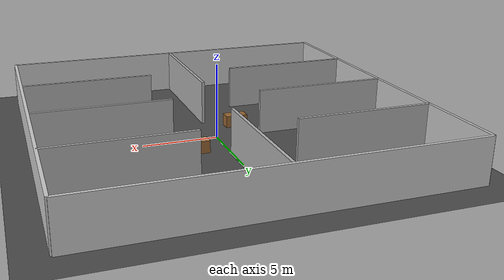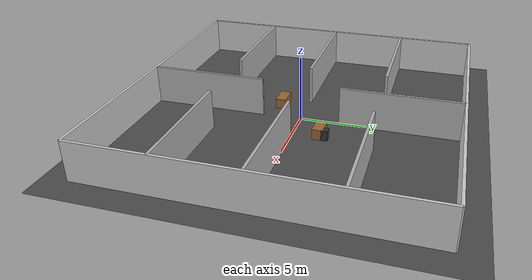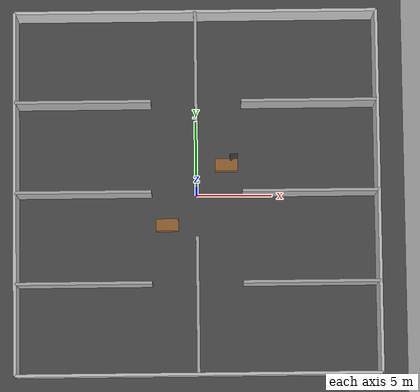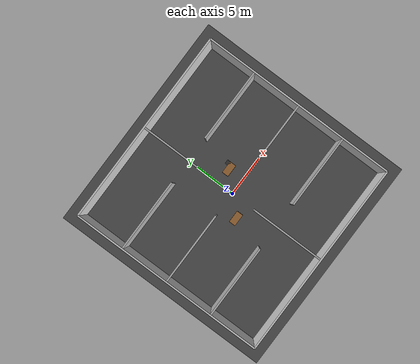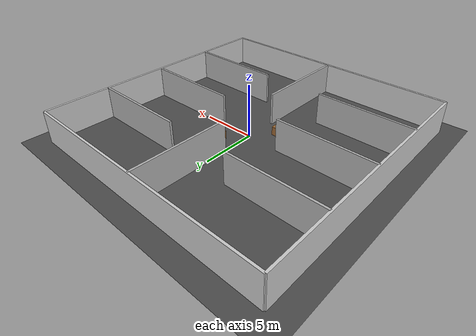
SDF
<sdf version="1.8">
 <world name="simple_office">
  <physics name="1ms" type="ignored">
   <max_step_size>0.001</max_step_size>
   <real_time_factor>1.0</real_time_factor>
  </physics>
  <plugin filename="gz-sim-physics-system" name="gz::sim::systems::Physics"/>
  <plugin filename="gz-sim-user-commands-system" name="gz::sim::systems::UserCommands"/>
  <plugin filename="gz-sim-scene-broadcaster-system" name="gz::sim::systems::SceneBroadcaster"/>
  <plugin filename="gz-sim-contact-system" name="gz::sim::systems::Contact"/>
  <plugin filename="gz-sim-sensors-system" name="gz::sim::systems::Sensors">
   <render_engine>ogre2</render_engine>
  </plugin>
  <plugin filename="gz-sim-scene-broadcaster-system" name="gz::sim::systems::SceneBroadcaster"/>
  <light type="directional" name="sun">
   <pose>0 0 10 0 0 0</pose>
   <diffuse>0.8 0.8 0.8 1</diffuse>
   <specular>0.2 0.2 0.2 1</specular>
   <attenuation>
    <range>1000</range>
    <constant>0.9</constant>
    <linear>0.01</linear>
    <quadratic>0.001</quadratic>
   </attenuation>
   <direction>-0.5 0.1 -0.9</direction>
  </light>
  <model name="ground_plane">
   <static>true</static>
   <link name="link">
    <collision name="collision">
     <geometry><plane><normal>0 0 1</normal><size>200 200</size></plane></geometry>
    </collision>
    <visual name="visual">
     <geometry><plane><normal>0 0 1</normal><size>200 200</size></plane></geometry>
     <material>
      <ambient>0.3 0.3 0.3 1</ambient>
      <diffuse>0.3 0.3 0.3 1</diffuse>
      <specular>0.3 0.3 0.3 1</specular>
     </material>
    </visual>
   </link>
  </model>
  <model name="outer_wall_east">
   <static>true</static>
   <pose>12 0 1.5 0 0 0</pose>
   <link name="link">
    <collision name="collision"><geometry><box><size>0.2 24 3</size></box></geometry></collision>
    <visual name="visual">
     <geometry><box><size>0.2 24 3</size></box></geometry>
     <material>
      <ambient>0.8 0.8 0.8 1</ambient>
      <diffuse>0.8 0.8 0.8 1</diffuse>
      <specular>0.8 0.8 0.8 1</specular>
     </material>
    </visual>
   </link>
  </model>
  <model name="outer_wall_west">
   <static>true</static>
   <pose>-12 0 1.5 0 0 0</pose>
   <link name="link">
    <collision name="collision"><geometry><box><size>0.2 24 3</size></box></geometry></collision>
    <visual name="visual">
     <geometry><box><size>0.2 24 3</size></box></geometry>
     <material>
      <ambient>0.8 0.8 0.8 1</ambient>
      <diffuse>0.8 0.8 0.8 1</diffuse>
      <specular>0.8 0.8 0.8 1</specular>
     </material>
    </visual>
   </link>
  </model>
  <model name="outer_wall_north">
   <static>true</static>
   <pose>0 12 1.5 0 0 0</pose>
   <link name="link">
    <collision name="collision"><geometry><box><size>24 0.2 3</size></box></geometry></collision>
    <visual name="visual">
     <geometry><box><size>24 0.2 3</size></box></geometry>
     <material>
      <ambient>0.8 0.8 0.8 1</ambient>
      <diffuse>0.8 0.8 0.8 1</diffuse>
      <specular>0.8 0.8 0.8 1</specular>
     </material>
    </visual>
   </link>
  </model>
  <model name="outer_wall_south">
   <static>true</static>
   <pose>0 -12 1.5 0 0 0</pose>
   <link name="link">
    <collision name="collision"><geometry><box><size>24 0.2 3</size></box></geometry></collision>
    <visual name="visual">
     <geometry><box><size>24 0.2 3</size></box></geometry>
     <material>
      <ambient>0.8 0.8 0.8 1</ambient>
      <diffuse>0.8 0.8 0.8 1</diffuse>
      <specular>0.8 0.8 0.8 1</specular>
     </material>
    </visual>
   </link>
  </model>
  <model name="center_horizontal_left">
   <static>true</static>
   <pose>-7.5 0 1.5 0 0 0</pose>
   <link name="link">
    <collision name="collision"><geometry><box><size>9 0.2 3</size></box></geometry></collision>
    <visual name="visual">
     <geometry><box><size>9 0.2 3</size></box></geometry>
     <material>
      <ambient>0.7 0.7 0.7 1</ambient>
      <diffuse>0.7 0.7 0.7 1</diffuse>
      <specular>0.7 0.7 0.7 1</specular>
     </material>
    </visual>
   </link>
  </model>
  <model name="center_horizontal_right">
   <static>true</static>
   <pose>7.5 0 1.5 0 0 0</pose>
   <link name="link">
    <collision name="collision"><geometry><box><size>9 0.2 3</size></box></geometry></collision>
    <visual name="visual">
     <geometry><box><size>9 0.2 3</size></box></geometry>
     <material>
      <ambient>0.7 0.7 0.7 1</ambient>
      <diffuse>0.7 0.7 0.7 1</diffuse>
      <specular>0.7 0.7 0.7 1</specular>
     </material>
    </visual>
   </link>
  </model>
  <model name="center_vertical_bottom">
   <static>true</static>
   <pose>0 -7.5 1.5 0 0 0</pose>
   <link name="link">
    <collision name="collision"><geometry><box><size>0.2 9 3</size></box></geometry></collision>
    <visual name="visual">
     <geometry><box><size>0.2 9 3</size></box></geometry>
     <material>
      <ambient>0.7 0.7 0.7 1</ambient>
      <diffuse>0.7 0.7 0.7 1</diffuse>
      <specular>0.7 0.7 0.7 1</specular>
     </material>
    </visual>
   </link>
  </model>
  <model name="center_vertical_top">
   <static>true</static>
   <pose>0 7.5 1.5 0 0 0</pose>
   <link name="link">
    <collision name="collision"><geometry><box><size>0.2 9 3</size></box></geometry></collision>
    <visual name="visual">
     <geometry><box><size>0.2 9 3</size></box></geometry>
     <material>
      <ambient>0.7 0.7 0.7 1</ambient>
      <diffuse>0.7 0.7 0.7 1</diffuse>
      <specular>0.7 0.7 0.7 1</specular>
     </material>
    </visual>
   </link>
  </model>
  <model name="north_divider_left">
   <static>true</static>
   <pose>-7.5 6 1.5 0 0 0</pose>
   <link name="link">
    <collision name="collision"><geometry><box><size>9 0.2 3</size></box></geometry></collision>
    <visual name="visual">
     <geometry><box><size>9 0.2 3</size></box></geometry>
     <material>
      <ambient>0.7 0.7 0.7 1</ambient>
      <diffuse>0.7 0.7 0.7 1</diffuse>
      <specular>0.7 0.7 0.7 1</specular>
     </material>
    </visual>
   </link>
  </model>
  <model name="north_divider_right">
   <static>true</static>
   <pose>7.5 6 1.5 0 0 0</pose>
   <link name="link">
    <collision name="collision"><geometry><box><size>9 0.2 3</size></box></geometry></collision>
    <visual name="visual">
     <geometry><box><size>9 0.2 3</size></box></geometry>
     <material>
      <ambient>0.7 0.7 0.7 1</ambient>
      <diffuse>0.7 0.7 0.7 1</diffuse>
      <specular>0.7 0.7 0.7 1</specular>
     </material>
    </visual>
   </link>
  </model>
  <model name="south_divider_left">
   <static>true</static>
   <pose>-7.5 -6 1.5 0 0 0</pose>
   <link name="link">
    <collision name="collision"><geometry><box><size>9 0.2 3</size></box></geometry></collision>
    <visual name="visual">
     <geometry><box><size>9 0.2 3</size></box></geometry>
     <material>
      <ambient>0.7 0.7 0.7 1</ambient>
      <diffuse>0.7 0.7 0.7 1</diffuse>
      <specular>0.7 0.7 0.7 1</specular>
     </material>
    </visual>
   </link>
  </model>
  <model name="south_divider_right">
   <static>true</static>
   <pose>7.5 -6 1.5 0 0 0</pose>
   <link name="link">
    <collision name="collision"><geometry><box><size>9 0.2 3</size></box></geometry></collision>
    <visual name="visual">
     <geometry><box><size>9 0.2 3</size></box></geometry>
     <material>
      <ambient>0.7 0.7 0.7 1</ambient>
      <diffuse>0.7 0.7 0.7 1</diffuse>
      <specular>0.7 0.7 0.7 1</specular>
     </material>
    </visual>
   </link>
  </model>
  <model name="desk_1">
   <static>true</static>
   <pose>2 2 0.4 0 0 0</pose>
   <link name="link">
    <collision name="collision"><geometry><box><size>1.5 0.8 0.8</size></box></geometry></collision>
    <visual name="visual">
     <geometry><box><size>1.5 0.8 0.8</size></box></geometry>
     <material>
      <ambient>0.6 0.4 0.2 1</ambient>
      <diffuse>0.6 0.4 0.2 1</diffuse>
      <specular>0.6 0.4 0.2 1</specular>
     </material>
    </visual>
   </link>
  </model>
  <model name="desk_2">
   <static>true</static>
   <pose>-2 -2 0.4 0 0 0</pose>
   <link name="link">
    <collision name="collision"><geometry><box><size>1.5 0.8 0.8</size></box></geometry></collision>
    <visual name="visual">
     <geometry><box><size>1.5 0.8 0.8</size></box></geometry>
     <material>
      <ambient>0.6 0.4 0.2 1</ambient>
      <diffuse>0.6 0.4 0.2 1</diffuse>
      <specular>0.6 0.4 0.2 1</specular>
     </material>
    </visual>
   </link>
  </model>
  <model name="chair_1">
   <static>true</static>
   <pose>2.5 2.5 0.4 0 0 0</pose>
   <link name="link">
    <collision name="collision"><geometry><box><size>0.5 0.5 0.8</size></box></geometry></collision>
    <visual name="visual">
     <geometry><box><size>0.5 0.5 0.8</size></box></geometry>
     <material>
      <ambient>0.2 0.2 0.2 1</ambient>
      <diffuse>0.2 0.2 0.2 1</diffuse>
      <specular>0.2 0.2 0.2 1</specular>
     </material>
    </visual>
   </link>
  </model>
 </world>
</sdf>
